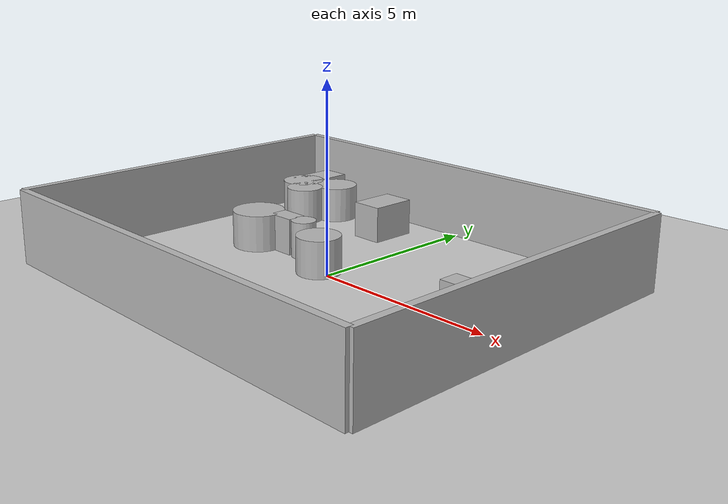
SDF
<?xml version="1.0"?>
<sdf version="1.6">
  <world name="env_89">

    <include><uri>model://ground_plane</uri></include>
    <include><uri>model://sun</uri></include>

    <!-- WALLS -->
    <model name="wall_north"><static>true</static><pose>0 5.053651423133787 1 0 0 0</pose>
      <link name="link"><collision name="collision">
        <geometry><box><size>12.137010971991337 0.2 2</size></box></geometry>
      </collision><visual name="visual">
        <geometry><box><size>12.137010971991337 0.2 2</size></box></geometry>
      </visual></link>
    </model>

    <model name="wall_south"><static>true</static><pose>0 -5.053651423133787 1 0 0 0</pose>
      <link name="link"><collision name="collision">
        <geometry><box><size>12.137010971991337 0.2 2</size></box></geometry>
      </collision><visual name="visual">
        <geometry><box><size>12.137010971991337 0.2 2</size></box></geometry>
      </visual></link>
    </model>

    <model name="wall_east"><static>true</static><pose>6.068505485995669 0 1 0 0 1.57</pose>
      <link name="link"><collision name="collision">
        <geometry><box><size>10.107302846267574 0.2 2</size></box></geometry>
      </collision><visual name="visual">
        <geometry><box><size>10.107302846267574 0.2 2</size></box></geometry>
      </visual></link>
    </model>

    <model name="wall_west"><static>true</static><pose>-6.068505485995669 0 1 0 0 1.57</pose>
      <link name="link"><collision name="collision">
        <geometry><box><size>10.107302846267574 0.2 2</size></box></geometry>
      </collision><visual name="visual">
        <geometry><box><size>10.107302846267574 0.2 2</size></box></geometry>
      </visual></link>
    </model>

    <!-- SENSOR -->

    <model name="lidar_sensor">
      <static>true</static>
      <pose>3.3918189007398976 1.4816138204511402 0.4 0 0 0</pose>
      <link name="link">
        <sensor name="lidar" type="ray">
          <pose>0 0 0 0 0 0</pose>
          <visualize>true</visualize>
          <always_on>true</always_on>
          <update_rate>10</update_rate>
          <ray>
            <scan><horizontal>
              <samples>180</samples>
              <resolution>1</resolution>
              <min_angle>-3.14159</min_angle>
              <max_angle>3.14159</max_angle>
            </horizontal></scan>
            <range><min>0.15</min><max>20.0</max><resolution>0.01</resolution></range>
          </ray>
          <plugin name="lidar_plugin" filename="liblidar_plugin.so"/>
        </sensor>
      </link>
    </model>

    <!-- OBSTACLES -->

    <model name="obstacle_0">
      <static>true</static>
      <pose>0.261343351543486 -4.371153573113004 0.5 0 0 0</pose>
      <link name="link">
        <collision name="collision">
          <geometry><box><size>0.44 1.33 1.0</size></box></geometry>
        </collision>
        <visual name="visual">
          <geometry><box><size>0.44 1.33 1.0</size></box></geometry>
        </visual>
      </link>
    </model>

    <model name="obstacle_1">
      <static>true</static>
      <pose>-4.813791518719638 3.4447395304557507 0.5 0 0 0</pose>
      <link name="link">
        <collision name="collision">
          <geometry><cylinder><radius>0.61</radius><length>1.0</length></cylinder></geometry>
        </collision>
        <visual name="visual">
          <geometry><cylinder><radius>0.61</radius><length>1.0</length></cylinder></geometry>
        </visual>
      </link>
    </model>

    <model name="obstacle_2">
      <static>true</static>
      <pose>5.087683251262293 -4.078471395805817 0.5 0 0 0</pose>
      <link name="link">
        <collision name="collision">
          <geometry><cylinder><radius>0.81</radius><length>1.0</length></cylinder></geometry>
        </collision>
        <visual name="visual">
          <geometry><cylinder><radius>0.81</radius><length>1.0</length></cylinder></geometry>
        </visual>
      </link>
    </model>

    <model name="obstacle_3">
      <static>true</static>
      <pose>-4.1782974878890355 2.9308415276935182 0.5 0 0 0</pose>
      <link name="link">
        <collision name="collision">
          <geometry><cylinder><radius>0.53</radius><length>1.0</length></cylinder></geometry>
        </collision>
        <visual name="visual">
          <geometry><cylinder><radius>0.53</radius><length>1.0</length></cylinder></geometry>
        </visual>
      </link>
    </model>

    <model name="obstacle_4">
      <static>true</static>
      <pose>4.349204441366528 0.15628739496886368 0.5 0 0 0</pose>
      <link name="link">
        <collision name="collision">
          <geometry><box><size>1.05 0.57 1.0</size></box></geometry>
        </collision>
        <visual name="visual">
          <geometry><box><size>1.05 0.57 1.0</size></box></geometry>
        </visual>
      </link>
    </model>

    <model name="obstacle_5">
      <static>true</static>
      <pose>-2.2834083565981147 0.6289690135576569 0.5 0 0 0</pose>
      <link name="link">
        <collision name="collision">
          <geometry><box><size>0.79 0.53 1.0</size></box></geometry>
        </collision>
        <visual name="visual">
          <geometry><box><size>0.79 0.53 1.0</size></box></geometry>
        </visual>
      </link>
    </model>

    <model name="obstacle_6">
      <static>true</static>
      <pose>-0.38868213861855594 0.060437568488549864 0.5 0 0 0</pose>
      <link name="link">
        <collision name="collision">
          <geometry><cylinder><radius>0.59</radius><length>1.0</length></cylinder></geometry>
        </collision>
        <visual name="visual">
          <geometry><cylinder><radius>0.59</radius><length>1.0</length></cylinder></geometry>
        </visual>
      </link>
    </model>

    <model name="obstacle_7">
      <static>true</static>
      <pose>-4.85991811701773 4.106326377224332 0.5 0 0 0</pose>
      <link name="link">
        <collision name="collision">
          <geometry><box><size>0.8 1.48 1.0</size></box></geometry>
        </collision>
        <visual name="visual">
          <geometry><box><size>0.8 1.48 1.0</size></box></geometry>
        </visual>
      </link>
    </model>

    <model name="obstacle_8">
      <static>true</static>
      <pose>-3.7519960768713316 3.8075290460548397 0.5 0 0 0</pose>
      <link name="link">
        <collision name="collision">
          <geometry><cylinder><radius>0.62</radius><length>1.0</length></cylinder></geometry>
        </collision>
        <visual name="visual">
          <geometry><cylinder><radius>0.62</radius><length>1.0</length></cylinder></geometry>
        </visual>
      </link>
    </model>

    <model name="obstacle_9">
      <static>true</static>
      <pose>-3.2091375995655116 0.383161515635452 0.5 0 0 0</pose>
      <link name="link">
        <collision name="collision">
          <geometry><cylinder><radius>0.72</radius><length>1.0</length></cylinder></geometry>
        </collision>
        <visual name="visual">
          <geometry><cylinder><radius>0.72</radius><length>1.0</length></cylinder></geometry>
        </visual>
      </link>
    </model>

    <model name="obstacle_10">
      <static>true</static>
      <pose>5.353561298521914 3.6454539718545655 0.5 0 0 0</pose>
      <link name="link">
        <collision name="collision">
          <geometry><cylinder><radius>0.49</radius><length>1.0</length></cylinder></geometry>
        </collision>
        <visual name="visual">
          <geometry><cylinder><radius>0.49</radius><length>1.0</length></cylinder></geometry>
        </visual>
      </link>
    </model>

    <model name="obstacle_11">
      <static>true</static>
      <pose>-1.6110246167040443 0.6295672442345266 0.5 0 0 0</pose>
      <link name="link">
        <collision name="collision">
          <geometry><cylinder><radius>0.34</radius><length>1.0</length></cylinder></geometry>
        </collision>
        <visual name="visual">
          <geometry><cylinder><radius>0.34</radius><length>1.0</length></cylinder></geometry>
        </visual>
      </link>
    </model>

    <model name="obstacle_12">
      <static>true</static>
      <pose>-1.4998361150336734 3.514795391078219 0.5 0 0 0</pose>
      <link name="link">
        <collision name="collision">
          <geometry><box><size>0.89 1.3 1.0</size></box></geometry>
        </collision>
        <visual name="visual">
          <geometry><box><size>0.89 1.3 1.0</size></box></geometry>
        </visual>
      </link>
    </model>

  </world>
</sdf>
